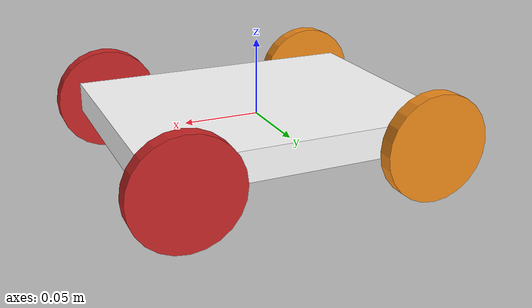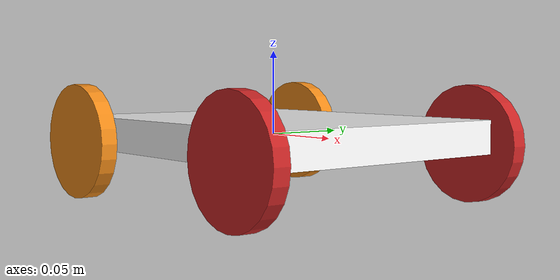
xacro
<?xml version="1.0"?>
<robot name="mybot" xmlns:xacro="http://www.ros.org/wiki/xacro">

  <material name="black">
    <color rgba="0.0 0.0 0.0 1.0"/>
  </material>

  <material name="blue">
    <color rgba="0.0 0.0 0.8 1.0"/>
  </material>

  <material name="green">
    <color rgba="0.0 0.8 0.0 1.0"/>
  </material>

  <material name="grey">
    <color rgba="0.2 0.2 0.2 1.0"/>
  </material>

  <material name="orange">
    <color rgba="${255/255} ${108/255} ${10/255} 1.0"/>
  </material>

  <material name="brown">
    <color rgba="${222/255} ${207/255} ${195/255} 1.0"/>
  </material>

  <material name="red">
    <color rgba="0.8 0.0 0.0 1.0"/>
  </material>

  <material name="white">
    <color rgba="1.0 1.0 1.0 1.0"/>
  </material>
  <gazebo reference="base_link">
    <material>Gazebo/white</material>
  </gazebo>
  <gazebo reference="left_wheel">
    <material>Gazebo/Red</material>
  </gazebo>
  <gazebo reference="right_wheel">
    <material>Gazebo/Red</material>
  </gazebo>
<gazebo reference="left_f_wheel">
    <material>Gazebo/Orange</material>
  </gazebo>
<gazebo reference="right_f_wheel">
    <material>Gazebo/Orange</material>
  </gazebo>

<gazebo>
  <plugin name="skid_steer_drive_controller" filename="libgazebo_ros_skid_steer_drive.so">
    <updateRate>100.0</updateRate>
    <robotNamespace>/</robotNamespace>
    <leftFrontJoint>left_f_wheel_joint</leftFrontJoint>
    <rightFrontJoint>right_f_wheel_joint</rightFrontJoint>
    <leftRearJoint>left_wheel_joint</leftRearJoint>
    <rightRearJoint>right_wheel_joint</rightRearJoint>
    <wheelSeparation>0.15</wheelSeparation>
    <wheelDiameter>0.07</wheelDiameter>
    <robotBaseFrame>base_link</robotBaseFrame>
    <torque>20</torque>
    <topicName>cmd_vel</topicName>
    <broadcastTF>true</broadcastTF>
  </plugin>
</gazebo>
  <xacro:property name="base_width" value="0.16"/>
  <xacro:property name="base_len" value="0.2"/>
  <xacro:property name="wheel_radius" value="0.035"/>
  <xacro:property name="base_wheel_gap" value="0.007"/>
  <xacro:property name="wheel_separation" value="0.15"/>
  <xacro:property name="wheel_joint_offset" value="0.02"/>

  <xacro:macro name="box_inertia" params="m w h d">
    <inertial>
      <mass value="${m}"/>
      <inertia ixx="${m / 12.0 * (d*d + h*h)}" ixy="0.0" ixz="0.0" iyy="${m / 12.0 * (w*w + h*h)}" iyz="0.0" izz="${m / 12.0 * (w*w + d*d)}"/>
    </inertial>
  </xacro:macro>

  <link name="base_link">
    <xacro:box_inertia m="10" w="${base_len}" h="${base_width}" d="0.02"/>
    <visual>
      <geometry>
        <box size="${base_len} ${base_width} 0.02"/>
      </geometry>
<material name="white"/>
    </visual>
    <collision>
      <geometry>
        <box size="${base_len} ${base_width} 0.02"/>
      </geometry>

    </collision>
  </link>
   <xacro:macro name="cylinder_inertia" params="m r h">
    <inertial>
      <mass value="${m}"/>
      <inertia ixx="${m*(3*r*r+h*h)/12}" ixy = "0" ixz = "0" iyy="${m*(3*r*r+h*h)/12}" iyz = "0" izz="${m*r*r/2}"/>
    </inertial>
  </xacro:macro>

  <xacro:macro name="wheel" params="prefix reflect wheel_joint">
    <link name="${prefix}_wheel">
      <visual>
        <origin xyz="0 0 0" rpy="${pi/2} 0 0"/>
        <geometry>
          <cylinder radius="${wheel_radius}" length="0.01"/>
        </geometry>
      </visual>
      <collision>
        <origin xyz="0 0 0" rpy="${pi/2} 0 0"/>
        <geometry>
          <cylinder radius="${wheel_radius}" length="0.01"/>
        </geometry>
      </collision>
      <xacro:cylinder_inertia m="10" r="${wheel_radius}" h="0.005"/>
    </link>

    <joint name="${prefix}_wheel_joint" type="continuous">
      <axis xyz="0 1 0" rpy="0 0 0" />
      <parent link="base_link"/>
      <child link="${prefix}_wheel"/>
      <origin xyz="${wheel_joint} ${((base_width/2)+base_wheel_gap)*reflect} -0.005" rpy="0 0 0"/>
    </joint>
  </xacro:macro>

  <xacro:wheel prefix="left" reflect="1" wheel_joint="0.08" />
  <xacro:wheel prefix="right" reflect="-1" wheel_joint="0.08"/>
  <xacro:wheel prefix="left_f" reflect="1" wheel_joint="-0.08" />
  <xacro:wheel prefix="right_f" reflect="-1" wheel_joint="-0.08"/>
</robot>
